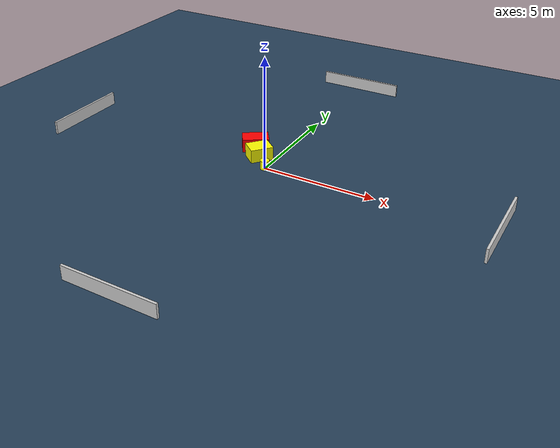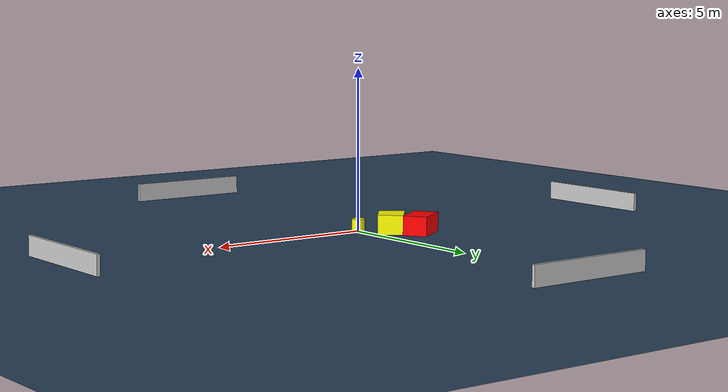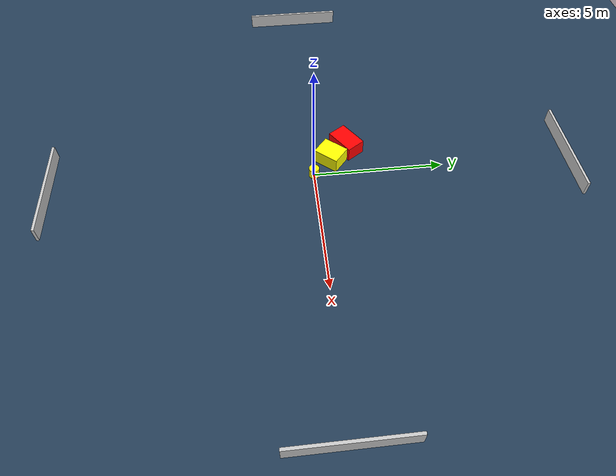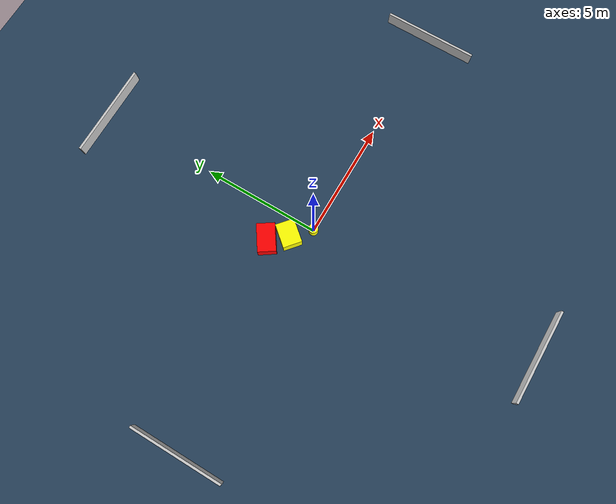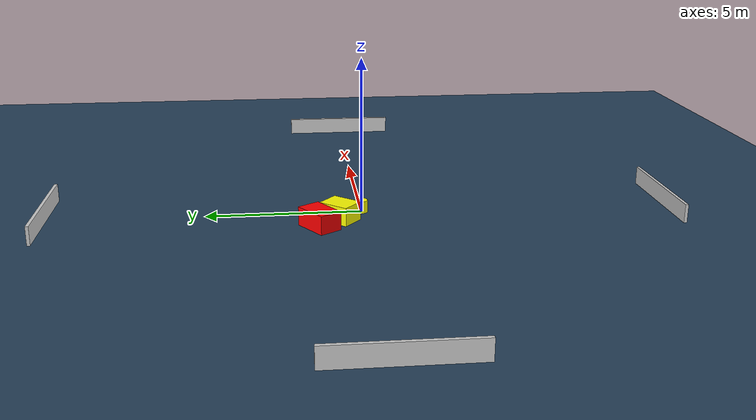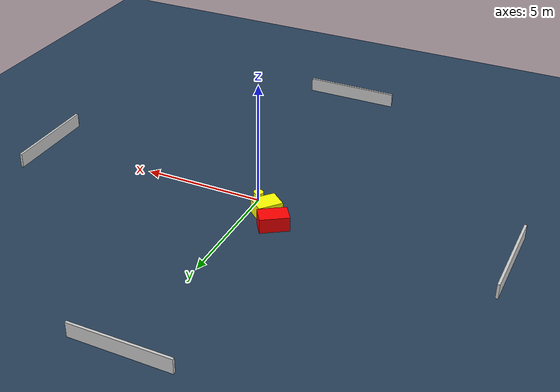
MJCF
<?xml version="1.0" ?>
<mujoco model="generated_environment">
  <option timestep="0.01" integrator="RK4" cone="elliptic"/>
  <default>
    <geom density="1"/>
  </default>
  <asset>
    <texture builtin="gradient" height="3072" name="skybox" rgb1="0.3 0.5 0.7" rgb2="0 0 0" type="skybox" width="512"/>
    <texture builtin="checker" height="300" name="groundplane" rgb1="0.2 0.3 0.4" rgb2="0.1 0.2 0.3" type="2d" width="300"/>
    <material name="groundplane" reflectance="0.2" texrepeat="5 5" texture="groundplane"/>
  </asset>
  <worldbody>
    <light dir="0 0 -1" directional="true" pos="0 0 1.5"/>
    <geom condim="3" friction="0.5 0.005 0.001" material="groundplane" name="floor" pos="0 0 0" size="0 0 0.05" type="plane"/>
    <body name="walls">
      <geom name="wall_1" condim="4" pos="-10.0 0.0 0.3" rgba="0.800000011920929 0.800000011920929 0.800000011920929 1.0" size="0.05 2.0 0.3" type="box"/>
      <geom name="wall_2" condim="4" pos="10.0 0.0 0.3" rgba="0.800000011920929 0.800000011920929 0.800000011920929 1.0" size="0.05 2.0 0.3" type="box"/>
      <geom name="wall_3" condim="4" pos="0.0 -10.0 0.3" rgba="0.800000011920929 0.800000011920929 0.800000011920929 1.0" size="2.0 0.05 0.3" type="box"/>
      <geom name="wall_4" condim="4" pos="0.0 10.0 0.3" rgba="0.800000011920929 0.800000011920929 0.800000011920929 1.0" size="2.0 0.05 0.3" type="box"/>
    </body>
    <body name="robot">
      <joint name="joint_x" type="slide" pos="0 0 0" axis="1 0 0"/>
      <joint name="joint_y" type="slide" pos="0 0 0" axis="0 1 0"/>
      <geom name="robot" type="cylinder" pos="0.0 0.0 0.2" size="0.2 0.2 0.0" mass="5.0" friction="1.0 0.005 0.0001" condim="4" rgba="1.0 1.0 0.0 1.0"/>
    </body>
    <body name="obstacle_1_movable">
      <geom name="obstacle_1_movable" condim="4" pos="-0.7030508409521208 0.7337588028363619 0.3" euler="0 0 139.92562740216542" friction="0.0 0.005 0.001" rgba="1.0 1.0 0.0 1.0" size="0.39648971967049423 0.5044677606722596 0.3" type="box" mass="0.1"/>
      <joint type="free"/>
    </body>
    <body name="obstacle_2_static">
      <geom name="obstacle_2_static" condim="4" pos="-1.3039542851564458 1.416989642283092 0.3" euler="0 0 33.862992143961364" friction="0.0 0.005 0.001" rgba="1.0 0.0 0.0 1.0" size="0.5856231816395876 0.37667048756891186 0.3" type="box"/>
    </body>
  </worldbody>
  <actuator>
    <motor name="actuator_x" joint="joint_x" gear="1" ctrlrange="-1 1"/>
    <motor name="actuator_y" joint="joint_y" gear="1" ctrlrange="-1 1"/>
  </actuator>
</mujoco>
